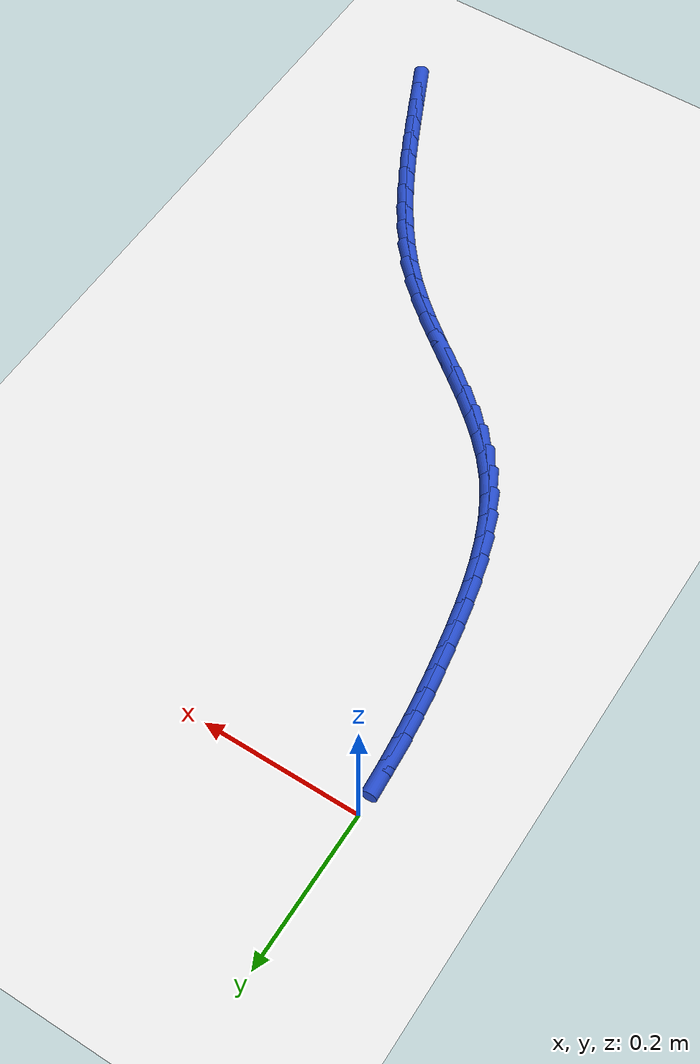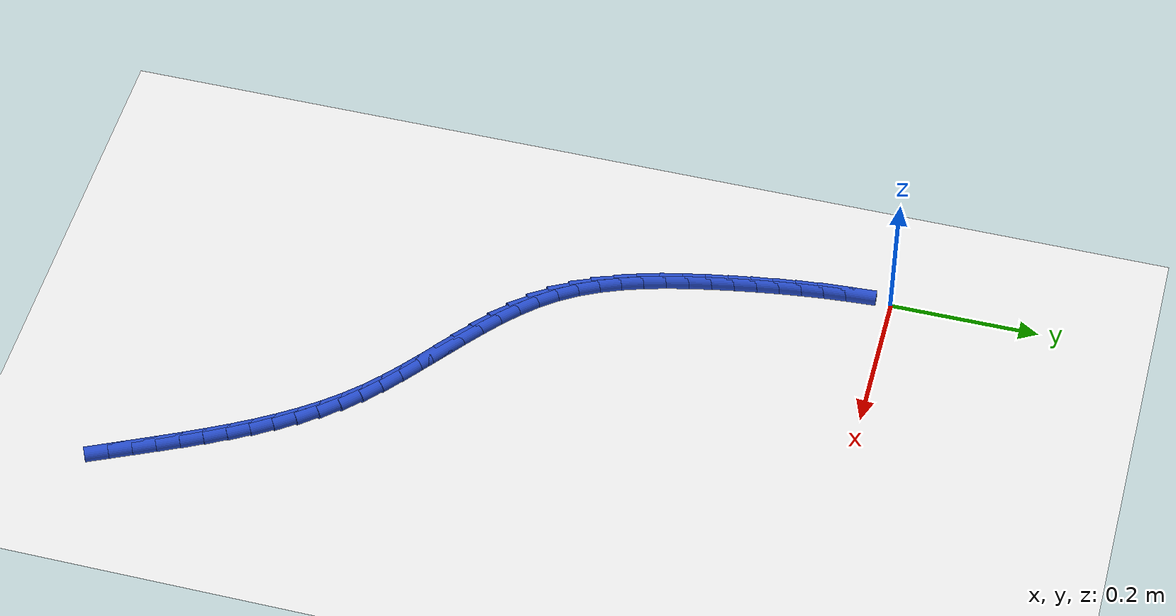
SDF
<sdf version="1.6">
 <world name="default">
  <model name="ground_plane">
   <static>1</static>
   <link name="link">
    <collision name="collision">
     <geometry><plane><normal>0 0 1</normal><size>100 100</size></plane></geometry>
     <surface><friction><ode><mu>100</mu><mu2>50</mu2></ode></friction></surface>
    </collision>
    <visual name="visual">
     <cast_shadows>0</cast_shadows>
     <geometry><plane><normal>0 0 1</normal><size>100 100</size></plane></geometry>
     <material>
      <script><uri>file://media/materials/scripts/gazebo.material</uri><name>Gazebo/WhiteGlow</name></script>
     </material>
    </visual>
   </link>
  </model>
  <model name="line">
   <link name="link_244">
    <pose>0.4968283918594127 -0.921236512278972 0.01 0 1.57 -1.1297238582003886</pose>
    <collision name="collision">
     <geometry><cylinder><radius>0.01</radius><length>0.08</length></cylinder></geometry>
    </collision>
    <visual name="visual">
     <material>
      <script><name>Gazebo/Blue</name><uri>file://media/materials/scripts/gazebo.material</uri></script>
     </material>
     <geometry><cylinder><radius>0.01</radius><length>0.08</length></cylinder></geometry>
    </visual>
   </link>
   <link name="link_245">
    <pose>0.48371249647522513 -0.8934539755475275 0.01 0 1.57 -1.1279346172208475</pose>
    <collision name="collision">
     <geometry><cylinder><radius>0.01</radius><length>0.08</length></cylinder></geometry>
    </collision>
    <visual name="visual">
     <material>
      <script><name>Gazebo/Blue</name><uri>file://media/materials/scripts/gazebo.material</uri></script>
     </material>
     <geometry><cylinder><radius>0.01</radius><length>0.08</length></cylinder></geometry>
    </visual>
   </link>
   <link name="link_246">
    <pose>0.47052553029591354 -0.8656498674711068 0.01 0 1.57 -1.119951059140756</pose>
    <collision name="collision">
     <geometry><cylinder><radius>0.01</radius><length>0.08</length></cylinder></geometry>
    </collision>
    <visual name="visual">
     <material>
      <script><name>Gazebo/Blue</name><uri>file://media/materials/scripts/gazebo.material</uri></script>
     </material>
     <geometry><cylinder><radius>0.01</radius><length>0.08</length></cylinder></geometry>
    </visual>
   </link>
   <link name="link_247">
    <pose>0.457119464716721 -0.837956991874018 0.01 0 1.57 -1.1057282056392863</pose>
    <collision name="collision">
     <geometry><cylinder><radius>0.01</radius><length>0.08</length></cylinder></geometry>
    </collision>
    <visual name="visual">
     <material>
      <script><name>Gazebo/Blue</name><uri>file://media/materials/scripts/gazebo.material</uri></script>
     </material>
     <geometry><cylinder><radius>0.01</radius><length>0.08</length></cylinder></geometry>
    </visual>
   </link>
   <link name="link_248">
    <pose>0.44334627113289055 -0.8105081525805691 0.01 0 1.57 -1.0851641034041895</pose>
    <collision name="collision">
     <geometry><cylinder><radius>0.01</radius><length>0.08</length></cylinder></geometry>
    </collision>
    <visual name="visual">
     <material>
      <script><name>Gazebo/Blue</name><uri>file://media/materials/scripts/gazebo.material</uri></script>
     </material>
     <geometry><cylinder><radius>0.01</radius><length>0.08</length></cylinder></geometry>
    </visual>
   </link>
   <link name="link_249">
    <pose>0.429057920939665 -0.783436153415068 0.01 0 1.57 -1.058114906451906</pose>
    <collision name="collision">
     <geometry><cylinder><radius>0.01</radius><length>0.08</length></cylinder></geometry>
    </collision>
    <visual name="visual">
     <material>
      <script><name>Gazebo/Blue</name><uri>file://media/materials/scripts/gazebo.material</uri></script>
     </material>
     <geometry><cylinder><radius>0.01</radius><length>0.08</length></cylinder></geometry>
    </visual>
   </link>
   <link name="link_250">
    <pose>0.41410638553228735 -0.7568737982018229 0.01 0 1.57 -1.0244181824740486</pose>
    <collision name="collision">
     <geometry><cylinder><radius>0.01</radius><length>0.08</length></cylinder></geometry>
    </collision>
    <visual name="visual">
     <material>
      <script><name>Gazebo/Blue</name><uri>file://media/materials/scripts/gazebo.material</uri></script>
     </material>
     <geometry><cylinder><radius>0.01</radius><length>0.08</length></cylinder></geometry>
    </visual>
   </link>
   <link name="link_251">
    <pose>0.39834363630600067 -0.7309538907651416 0.01 0 1.57 -0.9839265207337679</pose>
    <collision name="collision">
     <geometry><cylinder><radius>0.01</radius><length>0.08</length></cylinder></geometry>
    </collision>
    <visual name="visual">
     <material>
      <script><name>Gazebo/Blue</name><uri>file://media/materials/scripts/gazebo.material</uri></script>
     </material>
     <geometry><cylinder><radius>0.01</radius><length>0.08</length></cylinder></geometry>
    </visual>
   </link>
   <link name="link_252">
    <pose>0.38162164465604725 -0.7058092349293317 0.01 0 1.57 -0.9365531581713988</pose>
    <collision name="collision">
     <geometry><cylinder><radius>0.01</radius><length>0.08</length></cylinder></geometry>
    </collision>
    <visual name="visual">
     <material>
      <script><name>Gazebo/Blue</name><uri>file://media/materials/scripts/gazebo.material</uri></script>
     </material>
     <geometry><cylinder><radius>0.01</radius><length>0.08</length></cylinder></geometry>
    </visual>
   </link>
   <link name="link_253">
    <pose>0.3637923819776713 -0.6815726345187026 0.01 0 1.57 -0.882329703790676</pose>
    <collision name="collision">
     <geometry><cylinder><radius>0.01</radius><length>0.08</length></cylinder></geometry>
    </collision>
    <visual name="visual">
     <material>
      <script><name>Gazebo/Blue</name><uri>file://media/materials/scripts/gazebo.material</uri></script>
     </material>
     <geometry><cylinder><radius>0.01</radius><length>0.08</length></cylinder></geometry>
    </visual>
   </link>
   <link name="link_254">
    <pose>0.34470781966611513 -0.6583768933575617 0.01 0 1.57 -0.8214725717698856</pose>
    <collision name="collision">
     <geometry><cylinder><radius>0.01</radius><length>0.08</length></cylinder></geometry>
    </collision>
    <visual name="visual">
     <material>
      <script><name>Gazebo/Blue</name><uri>file://media/materials/scripts/gazebo.material</uri></script>
     </material>
     <geometry><cylinder><radius>0.01</radius><length>0.08</length></cylinder></geometry>
    </visual>
   </link>
   <link name="link_255">
    <pose>0.32421992911662173 -0.6363548152702169 0.01 0 1.57 -0.7582282362973614</pose>
    <collision name="collision">
     <geometry><cylinder><radius>0.01</radius><length>0.08</length></cylinder></geometry>
    </collision>
    <visual name="visual">
     <material>
      <script><name>Gazebo/Blue</name><uri>file://media/materials/scripts/gazebo.material</uri></script>
     </material>
     <geometry><cylinder><radius>0.01</radius><length>0.08</length></cylinder></geometry>
    </visual>
   </link>
   <link name="link_256">
    <pose>0.30227006417650293 -0.6155664312562834 0.01 0 1.57 -0.7082678027940237</pose>
    <collision name="collision">
     <geometry><cylinder><radius>0.01</radius><length>0.08</length></cylinder></geometry>
    </collision>
    <visual name="visual">
     <material>
      <script><name>Gazebo/Blue</name><uri>file://media/materials/scripts/gazebo.material</uri></script>
     </material>
     <geometry><cylinder><radius>0.01</radius><length>0.08</length></cylinder></geometry>
    </visual>
   </link>
   <link name="link_257">
    <pose>0.27916368457063057 -0.5957753269551977 0.01 0 1.57 -0.6750966620497089</pose>
    <collision name="collision">
     <geometry><cylinder><radius>0.01</radius><length>0.08</length></cylinder></geometry>
    </collision>
    <visual name="visual">
     <material>
      <script><name>Gazebo/Blue</name><uri>file://media/materials/scripts/gazebo.material</uri></script>
     </material>
     <geometry><cylinder><radius>0.01</radius><length>0.08</length></cylinder></geometry>
    </visual>
   </link>
   <link name="link_258">
    <pose>0.25529895063637553 -0.57666961362338 0.01 0 1.57 -0.6582231972007997</pose>
    <collision name="collision">
     <geometry><cylinder><radius>0.01</radius><length>0.08</length></cylinder></geometry>
    </collision>
    <visual name="visual">
     <material>
      <script><name>Gazebo/Blue</name><uri>file://media/materials/scripts/gazebo.material</uri></script>
     </material>
     <geometry><cylinder><radius>0.01</radius><length>0.08</length></cylinder></geometry>
    </visual>
   </link>
   <link name="link_259">
    <pose>0.23107402273151975 -0.5579374025006327 0.01 0 1.57 -0.6573880869056982</pose>
    <collision name="collision">
     <geometry><cylinder><radius>0.01</radius><length>0.08</length></cylinder></geometry>
    </collision>
    <visual name="visual">
     <material>
      <script><name>Gazebo/Blue</name><uri>file://media/materials/scripts/gazebo.material</uri></script>
     </material>
     <geometry><cylinder><radius>0.01</radius><length>0.08</length></cylinder></geometry>
    </visual>
   </link>
   <link name="link_260">
    <pose>0.2068870612138458 -0.5392668048267586 0.01 0 1.57 -0.6726890064361146</pose>
    <collision name="collision">
     <geometry><cylinder><radius>0.01</radius><length>0.08</length></cylinder></geometry>
    </collision>
    <visual name="visual">
     <material>
      <script><name>Gazebo/Blue</name><uri>file://media/materials/scripts/gazebo.material</uri></script>
     </material>
     <geometry><cylinder><radius>0.01</radius><length>0.08</length></cylinder></geometry>
    </visual>
   </link>
   <link name="link_261">
    <pose>0.18313622644113486 -0.5203459318415583 0.01 0 1.57 -0.7045946677390539</pose>
    <collision name="collision">
     <geometry><cylinder><radius>0.01</radius><length>0.08</length></cylinder></geometry>
    </collision>
    <visual name="visual">
     <material>
      <script><name>Gazebo/Blue</name><uri>file://media/materials/scripts/gazebo.material</uri></script>
     </material>
     <geometry><cylinder><radius>0.01</radius><length>0.08</length></cylinder></geometry>
    </visual>
   </link>
   <link name="link_262">
    <pose>0.16021967877117074 -0.500862894784836 0.01 0 1.57 -0.7538441119434206</pose>
    <collision name="collision">
     <geometry><cylinder><radius>0.01</radius><length>0.08</length></cylinder></geometry>
    </collision>
    <visual name="visual">
     <material>
      <script><name>Gazebo/Blue</name><uri>file://media/materials/scripts/gazebo.material</uri></script>
     </material>
     <geometry><cylinder><radius>0.01</radius><length>0.08</length></cylinder></geometry>
    </visual>
   </link>
   <link name="link_263">
    <pose>0.1385355785617348 -0.48050580489639305 0.01 0 1.57 -0.8211920894583644</pose>
    <collision name="collision">
     <geometry><cylinder><radius>0.01</radius><length>0.08</length></cylinder></geometry>
    </collision>
    <visual name="visual">
     <material>
      <script><name>Gazebo/Blue</name><uri>file://media/materials/scripts/gazebo.material</uri></script>
     </material>
     <geometry><cylinder><radius>0.01</radius><length>0.08</length></cylinder></geometry>
    </visual>
   </link>
   <link name="link_264">
    <pose>0.1184820861706093 -0.458962773416032 0.01 0 1.57 -0.9069454577344189</pose>
    <collision name="collision">
     <geometry><cylinder><radius>0.01</radius><length>0.08</length></cylinder></geometry>
    </collision>
    <visual name="visual">
     <material>
      <script><name>Gazebo/Blue</name><uri>file://media/materials/scripts/gazebo.material</uri></script>
     </material>
     <geometry><cylinder><radius>0.01</radius><length>0.08</length></cylinder></geometry>
    </visual>
   </link>
   <link name="link_265">
    <pose>0.10045736195557634 -0.43592191158355464 0.01 0 1.57 -1.006492240406634</pose>
    <collision name="collision">
     <geometry><cylinder><radius>0.01</radius><length>0.08</length></cylinder></geometry>
    </collision>
    <visual name="visual">
     <material>
      <script><name>Gazebo/Blue</name><uri>file://media/materials/scripts/gazebo.material</uri></script>
     </material>
     <geometry><cylinder><radius>0.01</radius><length>0.08</length></cylinder></geometry>
    </visual>
   </link>
   <link name="link_266">
    <pose>0.08477535886687901 -0.41114631487331554 0.01 0 1.57 -1.0986683035484375</pose>
    <collision name="collision">
     <geometry><cylinder><radius>0.01</radius><length>0.08</length></cylinder></geometry>
    </collision>
    <visual name="visual">
     <material>
      <script><name>Gazebo/Blue</name><uri>file://media/materials/scripts/gazebo.material</uri></script>
     </material>
     <geometry><cylinder><radius>0.01</radius><length>0.08</length></cylinder></geometry>
    </visual>
   </link>
   <link name="link_267">
    <pose>0.07131486715593807 -0.3847865784206853 0.01 0 1.57 -1.1768735595162796</pose>
    <collision name="collision">
     <geometry><cylinder><radius>0.01</radius><length>0.08</length></cylinder></geometry>
    </collision>
    <visual name="visual">
     <material>
      <script><name>Gazebo/Blue</name><uri>file://media/materials/scripts/gazebo.material</uri></script>
     </material>
     <geometry><cylinder><radius>0.01</radius><length>0.08</length></cylinder></geometry>
    </visual>
   </link>
   <link name="link_268">
    <pose>0.059814522016385666 -0.3571181013424658 0.01 0 1.57 -1.2417144772316386</pose>
    <collision name="collision">
     <geometry><cylinder><radius>0.01</radius><length>0.08</length></cylinder></geometry>
    </collision>
    <visual name="visual">
     <material>
      <script><name>Gazebo/Blue</name><uri>file://media/materials/scripts/gazebo.material</uri></script>
     </material>
     <geometry><cylinder><radius>0.01</radius><length>0.08</length></cylinder></geometry>
    </visual>
   </link>
   <link name="link_269">
    <pose>0.05001289106684865 -0.32841634292902516 0.01 0 1.57 -1.2941505076820097</pose>
    <collision name="collision">
     <geometry><cylinder><radius>0.01</radius><length>0.08</length></cylinder></geometry>
    </collision>
    <visual name="visual">
     <material>
      <script><name>Gazebo/Blue</name><uri>file://media/materials/scripts/gazebo.material</uri></script>
     </material>
     <geometry><cylinder><radius>0.01</radius><length>0.08</length></cylinder></geometry>
    </visual>
   </link>
   <link name="link_270">
    <pose>0.04164854192595366 -0.2989567624707306 0.01 0 1.57 -1.3351745049308568</pose>
    <collision name="collision">
     <geometry><cylinder><radius>0.01</radius><length>0.08</length></cylinder></geometry>
    </collision>
    <visual name="visual">
     <material>
      <script><name>Gazebo/Blue</name><uri>file://media/materials/scripts/gazebo.material</uri></script>
     </material>
     <geometry><cylinder><radius>0.01</radius><length>0.08</length></cylinder></geometry>
    </visual>
   </link>
   <link name="link_271">
    <pose>0.034460042212328075 -0.2690148192579522 0.01 0 1.57 -1.3656211521311883</pose>
    <collision name="collision">
     <geometry><cylinder><radius>0.01</radius><length>0.08</length></cylinder></geometry>
    </collision>
    <visual name="visual">
     <material>
      <script><name>Gazebo/Blue</name><uri>file://media/materials/scripts/gazebo.material</uri></script>
     </material>
     <geometry><cylinder><radius>0.01</radius><length>0.08</length></cylinder></geometry>
    </visual>
   </link>
   <link name="link_272">
    <pose>0.0281859595445985 -0.23886597258105716 0.01 0 1.57 -1.3862412070009715</pose>
    <collision name="collision">
     <geometry><cylinder><radius>0.01</radius><length>0.08</length></cylinder></geometry>
    </collision>
    <visual name="visual">
     <material>
      <script><name>Gazebo/Blue</name><uri>file://media/materials/scripts/gazebo.material</uri></script>
     </material>
     <geometry><cylinder><radius>0.01</radius><length>0.08</length></cylinder></geometry>
    </visual>
   </link>
   <link name="link_273">
    <pose>0.022569584942201553 -0.20878030677867104 0.01 0 1.57 -1.4024797270172369</pose>
    <collision name="collision">
     <geometry><cylinder><radius>0.01</radius><length>0.08</length></cylinder></geometry>
    </collision>
    <visual name="visual">
     <material>
      <script><name>Gazebo/Blue</name><uri>file://media/materials/scripts/gazebo.material</uri></script>
     </material>
     <geometry><cylinder><radius>0.01</radius><length>0.08</length></cylinder></geometry>
    </visual>
   </link>
   <link name="link_274">
    <pose>0.017488048860325203 -0.178875604799508 0.01 0 1.57 -1.420146295632022</pose>
    <collision name="collision">
     <geometry><cylinder><radius>0.01</radius><length>0.08</length></cylinder></geometry>
    </collision>
    <visual name="visual">
     <material>
      <script><name>Gazebo/Blue</name><uri>file://media/materials/scripts/gazebo.material</uri></script>
     </material>
     <geometry><cylinder><radius>0.01</radius><length>0.08</length></cylinder></geometry>
    </visual>
   </link>
   <link name="link_275">
    <pose>0.012968027558937903 -0.1490994752800885 0.01 0 1.57 -1.4394764242022524</pose>
    <collision name="collision">
     <geometry><cylinder><radius>0.01</radius><length>0.08</length></cylinder></geometry>
    </collision>
    <visual name="visual">
     <material>
      <script><name>Gazebo/Blue</name><uri>file://media/materials/scripts/gazebo.material</uri></script>
     </material>
     <geometry><cylinder><radius>0.01</radius><length>0.08</length></cylinder></geometry>
    </visual>
   </link>
   <link name="link_276">
    <pose>0.00904407410205859 -0.11939056351815122 0.01 0 1.57 -1.4603721097994753</pose>
    <collision name="collision">
     <geometry><cylinder><radius>0.01</radius><length>0.08</length></cylinder></geometry>
    </collision>
    <visual name="visual">
     <material>
      <script><name>Gazebo/Blue</name><uri>file://media/materials/scripts/gazebo.material</uri></script>
     </material>
     <geometry><cylinder><radius>0.01</radius><length>0.08</length></cylinder></geometry>
    </visual>
   </link>
   <link name="link_277">
    <pose>0.005750741553706212 -0.08968751481143501 0.01 0 1.57 -1.4827087605310525</pose>
    <collision name="collision">
     <geometry><cylinder><radius>0.01</radius><length>0.08</length></cylinder></geometry>
    </collision>
    <visual name="visual">
     <material>
      <script><name>Gazebo/Blue</name><uri>file://media/materials/scripts/gazebo.material</uri></script>
     </material>
     <geometry><cylinder><radius>0.01</radius><length>0.08</length></cylinder></geometry>
    </visual>
   </link>
   <link name="link_278">
    <pose>0.003122582977899697 -0.05992897445767868 0.01 0 1.57 -1.5063365792911472</pose>
    <collision name="collision">
     <geometry><cylinder><radius>0.01</radius><length>0.08</length></cylinder></geometry>
    </collision>
    <visual name="visual">
     <material>
      <script><name>Gazebo/Blue</name><uri>file://media/materials/scripts/gazebo.material</uri></script>
     </material>
     <geometry><cylinder><radius>0.01</radius><length>0.08</length></cylinder></geometry>
    </visual>
   </link>
  </model>
 </world>
</sdf>
